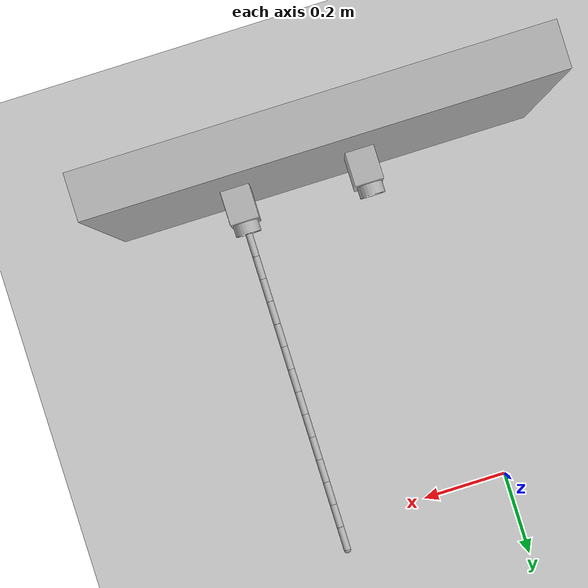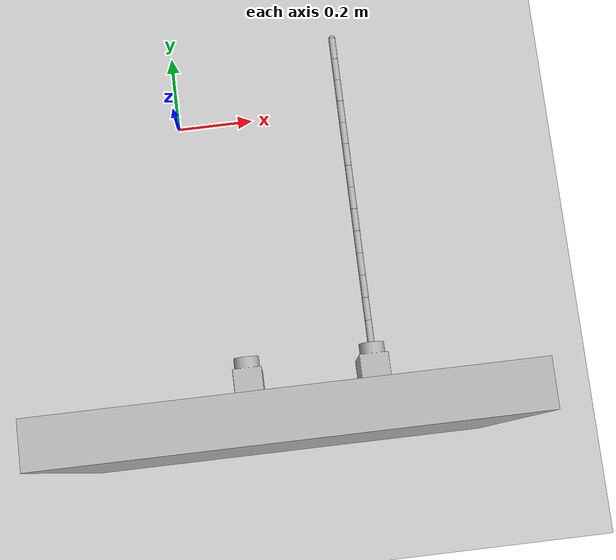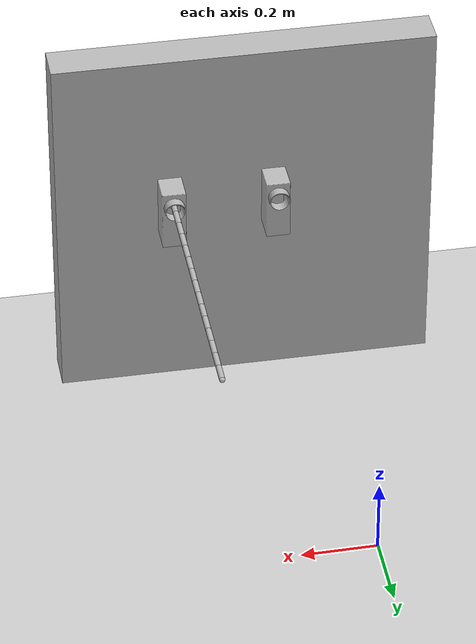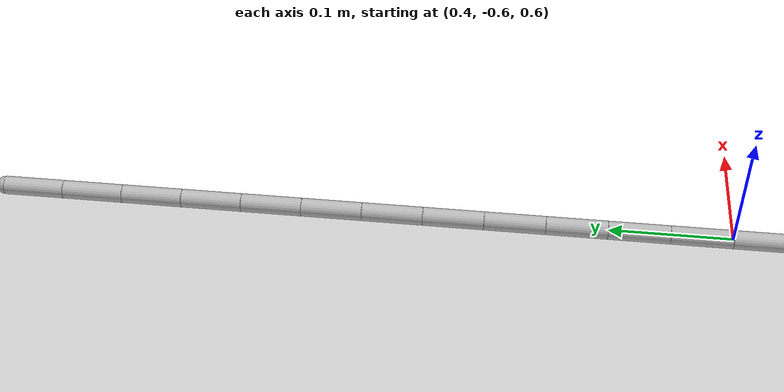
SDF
<sdf version="1.4">
 <world name="default">
  <plugin name="ros_link_attacher_plugin" filename="libgazebo_ros_link_attacher.so"/>
  <include><uri>model://sun</uri></include>
  <include><uri>model://ground_plane</uri></include>
  <include><uri>model://wall_sockets</uri><pose>0.2 -0.85 0.5 0 0 1.57</pose></include>
  <include><uri>model://cable</uri><pose>0.4 -0.8 0.6 0 0 1.57</pose></include>
 </world>
</sdf>

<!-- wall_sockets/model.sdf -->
<sdf version="1.5">
  <model name="wall_sockets">

    <pose>-0.75 -0.1 0.5 0 0 0</pose>

<joint name="joint_wall" type="fixed">
      <child>wall</child>
      <parent>world</parent>
      <axis>
        <use_parent_model_frame>true</use_parent_model_frame>
      </axis>
    </joint>

<link name="wall">
      <pose>0.000000 0.000000 0.000000 0.000000 -0.000000 0.000000</pose>
      <inertial>
        <pose>0.000000 0.000000 0.000000 0.000000 -0.000000 0.000000</pose>
        <mass>100000</mass>
        <inertia>
          <ixx>0.010000</ixx>
          <ixy>0.000000</ixy>
          <ixz>0.000000</ixz>
          <iyy>0.010000</iyy>
          <iyz>0.000000</iyz>
          <izz>0.010000</izz>
        </inertia>
      </inertial>
      <collision name="wall_collision">
        <pose>0.000000 0.000000 0.000000 0.000000 0.000000 0.000000</pose>
        <geometry>
	  <box>
	    <size> 0.1 1 1 </size>
	  </box>
        </geometry>
      </collision>
      <visual name="wall_vis">
        <pose>0.000000 0.000000 0.000000 0.000000 0.000000 0.000000</pose>
        <geometry>
          <box>
	    <size> 0.1 1 1 </size>
	  </box>
        </geometry>
      </visual>
      <velocity_decay />
    </link>

<joint name="joint_socket1" type="fixed">
      <child>socket1</child>
      <parent>wall</parent>
      <axis>
        <use_parent_model_frame>true</use_parent_model_frame>
      </axis>
    </joint>

<link name="socket1">
      <pose frame=''>0.125 -0.2 0.1 1.57 0 1.57</pose>
      <inertial>
        <pose frame=''>0 -0.041907 -0.028887 0 -0 0</pose>
        <mass>0.1684</mass>
        <inertia>
          <ixx>0.00062222</ixx>
          <ixy>9.8906e-10</ixy>
          <ixz>2.4666e-10</ixz>
          <iyy>0.00021389</iyy>
          <iyz>9.0339e-06</iyz>
          <izz>0.00061855</izz>
        </inertia>
      </inertial>
      <collision name="socket1_collision">
        <pose frame=''>0 0 0 1.5708 -0 0</pose>
        <geometry>
          <mesh>
            <scale>1 1 1</scale>
            <uri>model://socket/meshes/peng.STL</uri>
          </mesh>
        </geometry>
      </collision>
      <visual name="socket1_visual">
        <pose frame=''>0 0 0 1.5708 -0 0</pose>
        <geometry>
          <mesh>
            <scale>1 1 1</scale>
            <uri>model://socket/meshes/peng.STL</uri>
          </mesh>
        </geometry>
      </visual>
    </link>

<joint name="joint_socket2" type="fixed">
      <child>socket2</child>
      <parent>wall</parent>
      <axis>
        <use_parent_model_frame>true</use_parent_model_frame>
      </axis>
    </joint>

<link name="socket2">
      <pose frame=''>0.125 0.075 0.1 1.57 0 1.57</pose>
      <inertial>
        <pose frame=''>0 -0.041907 -0.028887 0 -0 0</pose>
        <mass>0.1684</mass>
        <inertia>
          <ixx>0.00062222</ixx>
          <ixy>9.8906e-10</ixy>
          <ixz>2.4666e-10</ixz>
          <iyy>0.00021389</iyy>
          <iyz>9.0339e-06</iyz>
          <izz>0.00061855</izz>
        </inertia>
      </inertial>
      <collision name="socket2_collision">
        <pose frame=''>0 0 0 1.5708 -0 0</pose>
        <geometry>
          <mesh>
            <scale>1 1 1</scale>
            <uri>model://socket/meshes/peng.STL</uri>
          </mesh>
        </geometry>
      </collision>
      <visual name="socket2_visual">
        <pose frame=''>0 0 0 1.5708 -0 0</pose>
        <geometry>
          <mesh>
            <scale>1 1 1</scale>
            <uri>model://socket/meshes/peng.STL</uri>
          </mesh>
        </geometry>
      </visual>
    </link>

  </model>
</sdf>

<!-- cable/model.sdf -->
<sdf version="1.5">
  <model name="cable">

    <pose>-0.65 -0.3 0.5 0 0 0</pose>

    <link name="plug">
      <pose>0.000000 0.000000 0.000000 0.000000 1.570796 0.000000</pose>
      <inertial>
        <pose>0.000000 0.000000 0.000000 0.000000 0.000000 0.000000</pose>
        <mass>0.100000</mass>
        <inertia>
          <ixx>0.010000</ixx>
          <ixy>0.000000</ixy>
          <ixz>0.000000</ixz>
          <iyy>0.010000</iyy>
          <iyz>0.000000</iyz>
          <izz>0.010000</izz>
        </inertia>
      </inertial>
      <collision name="plug_collision">
        <pose>-0.000000 0.000000 0.000000 0.000000 0.000000 0.000000</pose>
        <geometry>
          <cylinder>
            <radius>0.02</radius>
            <length>0.1</length>
          </cylinder>
        </geometry>
      </collision>
      <visual name="plug_vis">
        <pose>-0.000000 0.000000 0.000000 0.000000 0.000000 0.000000</pose>
        <geometry>
          <cylinder>
            <radius>0.02</radius>
            <length>0.1</length>
          </cylinder>
        </geometry>
      </visual>
      <velocity_decay />
    </link>

    <link name="link_01">

      <pose>0.050000 0.000000 0.000000 0.000000 -0.000000 0.000000</pose>
      <inertial>
        <pose>0.000000 0.000000 0.000000 0.000000 -0.000000 0.000000</pose>
        <mass>0.100000</mass>
        <inertia>
          <ixx>0.010000</ixx>
          <ixy>0.000000</ixy>
          <ixz>0.000000</ixz>
          <iyy>0.010000</iyy>
          <iyz>0.000000</iyz>
          <izz>0.010000</izz>
        </inertia>
      </inertial>
      <collision name="link_01_collision">
        <pose>0.025000 0.000000 0.000000 0.000000 1.570790 0.000000</pose>
        <geometry>
          <cylinder>
            <length>0.050000</length>
            <radius>0.007500</radius>
          </cylinder>
        </geometry>
      </collision>
      <visual name="link_01_vis">
        <pose>0.025000 0.000000 0.000000 0.000000 1.570790 0.000000</pose>
        <geometry>
          <cylinder>
            <length>0.050000</length>
            <radius>0.007500</radius>
          </cylinder>
        </geometry>
      </visual>
      <velocity_decay />
    </link>
    <joint name="joint_plug" type="fixed">
      <child>link_01</child>
      <parent>plug</parent>
      <axis>
        <xyz>0.000000 1.000000 0.000000</xyz>
        <limit>
          <lower>-0.200000</lower>
          <upper>0.200000</upper>
        </limit>
        <dynamics>
          <damping>10.000000</damping>
          <friction>0.000000</friction>
        </dynamics>
        <use_parent_model_frame>true</use_parent_model_frame>
      </axis>
    </joint>
    <link name="sphere_02">
      <gravity>false</gravity>
      <pose>0.100000 0.000000 0.000000 0.000000 -0.000000 0.000000</pose>
      <inertial>
        <pose>0.000000 0.000000 0.000000 0.000000 -0.000000 0.000000</pose>
        <mass>0.100000</mass>
        <inertia>
          <ixx>0.010000</ixx>
          <ixy>0.000000</ixy>
          <ixz>0.000000</ixz>
          <iyy>0.010000</iyy>
          <iyz>0.000000</iyz>
          <izz>0.010000</izz>
        </inertia>
      </inertial>
      <collision name="sphere_02_collision">
        <pose>0.000000 0.000000 0.000000 0.000000 -0.000000 0.000000</pose>
        <geometry>
          <sphere>
            <radius>0.007500</radius>
          </sphere>
        </geometry>
      </collision>
      <visual name="sphere_02_vis">
        <pose>0.000000 0.000000 0.000000 0.000000 -0.000000 0.000000</pose>
        <geometry>
          <sphere>
            <radius>0.007500</radius>
          </sphere>
        </geometry>
      </visual>
      <velocity_decay />
    </link>
    <joint name="joint_02_1" type="revolute">
      <child>sphere_02</child>
      <parent>link_01</parent>
      <axis>
        <xyz>0.000000 0.000000 1.000000</xyz>
        <limit>
          <lower>-0.005000</lower>
          <upper>0.005000</upper>
        </limit>
        <dynamics>
          <damping>10.000000</damping>
          <friction>0.000000</friction>
        </dynamics>
        <use_parent_model_frame>true</use_parent_model_frame>
      </axis>
    </joint>
    <link name="link_02">

      <pose>0.100000 0.000000 0.000000 0.000000 -0.000000 0.000000</pose>
      <inertial>
        <pose>0.000000 0.000000 0.000000 0.000000 -0.000000 0.000000</pose>
        <mass>0.100000</mass>
        <inertia>
          <ixx>0.010000</ixx>
          <ixy>0.000000</ixy>
          <ixz>0.000000</ixz>
          <iyy>0.010000</iyy>
          <iyz>0.000000</iyz>
          <izz>0.010000</izz>
        </inertia>
      </inertial>
      <collision name="link_02_collision">
        <pose>0.025000 0.000000 0.000000 0.000000 1.570790 0.000000</pose>
        <geometry>
          <cylinder>
            <length>0.050000</length>
            <radius>0.007500</radius>
          </cylinder>
        </geometry>
      </collision>
      <visual name="link_02_vis">
        <pose>0.025000 0.000000 0.000000 0.000000 1.570790 0.000000</pose>
        <geometry>
          <cylinder>
            <length>0.050000</length>
            <radius>0.007500</radius>
          </cylinder>
        </geometry>
      </visual>
      <velocity_decay />
    </link>
    <joint name="joint_02_2" type="revolute">
      <child>link_02</child>
      <parent>sphere_02</parent>
      <axis>
        <xyz>0.000000 1.000000 0.000000</xyz>
        <dynamics>
          <damping>1.75954</damping>
          <friction>0.000000</friction>
	  <spring_stiffness>0.557738</spring_stiffness>
        </dynamics>
        <use_parent_model_frame>true</use_parent_model_frame>
      </axis>
    </joint>
    <link name="sphere_03">
      <gravity>false</gravity>
      <pose>0.150000 0.000000 0.000000 0.000000 -0.000000 0.000000</pose>
      <inertial>
        <pose>0.000000 0.000000 0.000000 0.000000 -0.000000 0.000000</pose>
        <mass>0.100000</mass>
        <inertia>
          <ixx>0.010000</ixx>
          <ixy>0.000000</ixy>
          <ixz>0.000000</ixz>
          <iyy>0.010000</iyy>
          <iyz>0.000000</iyz>
          <izz>0.010000</izz>
        </inertia>
      </inertial>
      <collision name="sphere_03_collision">
        <pose>0.000000 0.000000 0.000000 0.000000 -0.000000 0.000000</pose>
        <geometry>
          <sphere>
            <radius>0.007500</radius>
          </sphere>
        </geometry>
      </collision>
      <visual name="sphere_03_vis">
        <pose>0.000000 0.000000 0.000000 0.000000 -0.000000 0.000000</pose>
        <geometry>
          <sphere>
            <radius>0.007500</radius>
          </sphere>
        </geometry>
      </visual>
      <velocity_decay />
    </link>
    <joint name="joint_03_1" type="revolute">
      <child>sphere_03</child>
      <parent>link_02</parent>
      <axis>
        <xyz>0.000000 0.000000 1.000000</xyz>
        <limit>
          <lower>-0.005000</lower>
          <upper>0.005000</upper>
        </limit>
        <dynamics>
          <damping>10.000000</damping>
          <friction>0.000000</friction>
        </dynamics>
        <use_parent_model_frame>true</use_parent_model_frame>
      </axis>
    </joint>
    <link name="link_03">

      <pose>0.150000 0.000000 0.000000 0.000000 -0.000000 0.000000</pose>
      <inertial>
        <pose>0.000000 0.000000 0.000000 0.000000 -0.000000 0.000000</pose>
        <mass>0.100000</mass>
        <inertia>
          <ixx>0.010000</ixx>
          <ixy>0.000000</ixy>
          <ixz>0.000000</ixz>
          <iyy>0.010000</iyy>
          <iyz>0.000000</iyz>
          <izz>0.010000</izz>
        </inertia>
      </inertial>
      <collision name="link_03_collision">
        <pose>0.025000 0.000000 0.000000 0.000000 1.570790 0.000000</pose>
        <geometry>
          <cylinder>
            <length>0.050000</length>
            <radius>0.007500</radius>
          </cylinder>
        </geometry>
      </collision>
      <visual name="link_03_vis">
        <pose>0.025000 0.000000 0.000000 0.000000 1.570790 0.000000</pose>
        <geometry>
          <cylinder>
            <length>0.050000</length>
            <radius>0.007500</radius>
          </cylinder>
        </geometry>
      </visual>
      <velocity_decay />
    </link>
    <joint name="joint_03_2" type="revolute">
      <child>link_03</child>
      <parent>sphere_03</parent>
      <axis>
        <xyz>0.000000 1.000000 0.000000</xyz>
        <dynamics>
          <damping>3.5445</damping>
          <friction>0.000000</friction>
	  <spring_stiffness>0.906265</spring_stiffness>
        </dynamics>
        <use_parent_model_frame>true</use_parent_model_frame>
      </axis>
    </joint>
    <link name="sphere_04">
      <gravity>false</gravity>
      <pose>0.200000 0.000000 0.000000 0.000000 -0.000000 0.000000</pose>
      <inertial>
        <pose>0.000000 0.000000 0.000000 0.000000 -0.000000 0.000000</pose>
        <mass>0.100000</mass>
        <inertia>
          <ixx>0.010000</ixx>
          <ixy>0.000000</ixy>
          <ixz>0.000000</ixz>
          <iyy>0.010000</iyy>
          <iyz>0.000000</iyz>
          <izz>0.010000</izz>
        </inertia>
      </inertial>
      <collision name="sphere_04_collision">
        <pose>0.000000 0.000000 0.000000 0.000000 -0.000000 0.000000</pose>
        <geometry>
          <sphere>
            <radius>0.007500</radius>
          </sphere>
        </geometry>
      </collision>
      <visual name="sphere_04_vis">
        <pose>0.000000 0.000000 0.000000 0.000000 -0.000000 0.000000</pose>
        <geometry>
          <sphere>
            <radius>0.007500</radius>
          </sphere>
        </geometry>
      </visual>
      <velocity_decay />
    </link>
    <joint name="joint_04_1" type="revolute">
      <child>sphere_04</child>
      <parent>link_03</parent>
      <axis>
        <xyz>0.000000 0.000000 1.000000</xyz>
        <limit>
          <lower>-0.005000</lower>
          <upper>0.005000</upper>
        </limit>
        <dynamics>
          <damping>10.000000</damping>
          <friction>0.000000</friction>
        </dynamics>
        <use_parent_model_frame>true</use_parent_model_frame>
      </axis>
    </joint>
    <link name="link_04">

      <pose>0.200000 0.000000 0.000000 0.000000 -0.000000 0.000000</pose>
      <inertial>
        <pose>0.000000 0.000000 0.000000 0.000000 -0.000000 0.000000</pose>
        <mass>0.0100000</mass>
        <inertia>
          <ixx>0.010000</ixx>
          <ixy>0.000000</ixy>
          <ixz>0.000000</ixz>
          <iyy>0.010000</iyy>
          <iyz>0.000000</iyz>
          <izz>0.010000</izz>
        </inertia>
      </inertial>
      <collision name="link_04_collision">
        <pose>0.025000 0.000000 0.000000 0.000000 1.570790 0.000000</pose>
        <geometry>
          <cylinder>
            <length>0.050000</length>
            <radius>0.007500</radius>
          </cylinder>
        </geometry>
      </collision>
      <visual name="link_04_vis">
        <pose>0.025000 0.000000 0.000000 0.000000 1.570790 0.000000</pose>
        <geometry>
          <cylinder>
            <length>0.050000</length>
            <radius>0.007500</radius>
          </cylinder>
        </geometry>
      </visual>
      <velocity_decay />
    </link>
    <joint name="joint_04_2" type="revolute">
      <child>link_04</child>
      <parent>sphere_04</parent>
      <axis>
        <xyz>0.000000 1.000000 0.000000</xyz>
        <dynamics>
          <damping>6.31788</damping>
          <friction>0.000000</friction>
          <spring_stiffness>0.675703</spring_stiffness>
        </dynamics>
        <use_parent_model_frame>true</use_parent_model_frame>
      </axis>
    </joint>
    <link name="sphere_05">
      <gravity>false</gravity>
      <pose>0.250000 0.000000 0.000000 0.000000 -0.000000 0.000000</pose>
      <inertial>
        <pose>0.000000 0.000000 0.000000 0.000000 -0.000000 0.000000</pose>
        <mass>0.100000</mass>
        <inertia>
          <ixx>0.010000</ixx>
          <ixy>0.000000</ixy>
          <ixz>0.000000</ixz>
          <iyy>0.010000</iyy>
          <iyz>0.000000</iyz>
          <izz>0.010000</izz>
        </inertia>
      </inertial>
      <collision name="sphere_05_collision">
        <pose>0.000000 0.000000 0.000000 0.000000 -0.000000 0.000000</pose>
        <geometry>
          <sphere>
            <radius>0.007500</radius>
          </sphere>
        </geometry>
      </collision>
      <visual name="sphere_05_vis">
        <pose>0.000000 0.000000 0.000000 0.000000 -0.000000 0.000000</pose>
        <geometry>
          <sphere>
            <radius>0.007500</radius>
          </sphere>
        </geometry>
      </visual>
      <velocity_decay />
    </link>
    <joint name="joint_05_1" type="revolute">
      <child>sphere_05</child>
      <parent>link_04</parent>
      <axis>
        <xyz>0.000000 0.000000 1.000000</xyz>
        <limit>
          <lower>-0.005000</lower>
          <upper>0.005000</upper>
        </limit>
        <dynamics>
          <damping>10.000000</damping>
          <friction>0.000000</friction>
        </dynamics>
        <use_parent_model_frame>true</use_parent_model_frame>
      </axis>
    </joint>
    <link name="link_05">

      <pose>0.250000 0.000000 0.000000 0.000000 -0.000000 0.000000</pose>
      <inertial>
        <pose>0.000000 0.000000 0.000000 0.000000 -0.000000 0.000000</pose>
        <mass>0.0100000</mass>
        <inertia>
          <ixx>0.010000</ixx>
          <ixy>0.000000</ixy>
          <ixz>0.000000</ixz>
          <iyy>0.010000</iyy>
          <iyz>0.000000</iyz>
          <izz>0.010000</izz>
        </inertia>
      </inertial>
      <collision name="link_05_collision">
        <pose>0.025000 0.000000 0.000000 0.000000 1.570790 0.000000</pose>
        <geometry>
          <cylinder>
            <length>0.050000</length>
            <radius>0.007500</radius>
          </cylinder>
        </geometry>
      </collision>
      <visual name="link_05_vis">
        <pose>0.025000 0.000000 0.000000 0.000000 1.570790 0.000000</pose>
        <geometry>
          <cylinder>
            <length>0.050000</length>
            <radius>0.007500</radius>
          </cylinder>
        </geometry>
      </visual>
      <velocity_decay />
    </link>
    <joint name="joint_05_2" type="revolute">
      <child>link_05</child>
      <parent>sphere_05</parent>
      <axis>
        <xyz>0.000000 1.000000 0.000000</xyz>
        <dynamics>
          <damping>7.02696</damping>
          <friction>0.000000</friction>
          <spring_stiffness>0.710039</spring_stiffness>
        </dynamics>
        <use_parent_model_frame>true</use_parent_model_frame>
      </axis>
    </joint>
    <link name="sphere_06">
      <gravity>false</gravity>
      <pose>0.300000 0.000000 0.000000 0.000000 -0.000000 0.000000</pose>
      <inertial>
        <pose>0.000000 0.000000 0.000000 0.000000 -0.000000 0.000000</pose>
        <mass>0.100000</mass>
        <inertia>
          <ixx>0.010000</ixx>
          <ixy>0.000000</ixy>
          <ixz>0.000000</ixz>
          <iyy>0.010000</iyy>
          <iyz>0.000000</iyz>
          <izz>0.010000</izz>
        </inertia>
      </inertial>
      <collision name="sphere_06_collision">
        <pose>0.000000 0.000000 0.000000 0.000000 -0.000000 0.000000</pose>
        <geometry>
          <sphere>
            <radius>0.007500</radius>
          </sphere>
        </geometry>
      </collision>
      <visual name="sphere_06_vis">
        <pose>0.000000 0.000000 0.000000 0.000000 -0.000000 0.000000</pose>
        <geometry>
          <sphere>
            <radius>0.007500</radius>
          </sphere>
        </geometry>
      </visual>
      <velocity_decay />
    </link>
    <joint name="joint_06_1" type="revolute">
      <child>sphere_06</child>
      <parent>link_05</parent>
      <axis>
        <xyz>0.000000 0.000000 1.000000</xyz>
        <limit>
          <lower>-0.005000</lower>
          <upper>0.005000</upper>
        </limit>
        <dynamics>
          <damping>10.000000</damping>
          <friction>0.000000</friction>
        </dynamics>
        <use_parent_model_frame>true</use_parent_model_frame>
      </axis>
    </joint>
    <link name="link_06">

      <pose>0.300000 0.000000 0.000000 0.000000 -0.000000 0.000000</pose>
      <inertial>
        <pose>0.000000 0.000000 0.000000 0.000000 -0.000000 0.000000</pose>
        <mass>0.0100000</mass>
        <inertia>
          <ixx>0.010000</ixx>
          <ixy>0.000000</ixy>
          <ixz>0.000000</ixz>
          <iyy>0.010000</iyy>
          <iyz>0.000000</iyz>
          <izz>0.010000</izz>
        </inertia>
      </inertial>
      <collision name="link_06_collision">
        <pose>0.025000 0.000000 0.000000 0.000000 1.570790 0.000000</pose>
        <geometry>
          <cylinder>
            <length>0.050000</length>
            <radius>0.007500</radius>
          </cylinder>
        </geometry>
      </collision>
      <visual name="link_06_vis">
        <pose>0.025000 0.000000 0.000000 0.000000 1.570790 0.000000</pose>
        <geometry>
          <cylinder>
            <length>0.050000</length>
            <radius>0.007500</radius>
          </cylinder>
        </geometry>
      </visual>
      <velocity_decay />
    </link>
    <joint name="joint_06_2" type="revolute">
      <child>link_06</child>
      <parent>sphere_06</parent>
      <axis>
        <xyz>0.000000 1.000000 0.000000</xyz>
        <limit>
          <lower>-0.500000</lower>
          <upper>0.500000</upper>
        </limit>
        <dynamics>
          <damping>10.000000</damping>
          <friction>0.000000</friction>
        </dynamics>
        <use_parent_model_frame>true</use_parent_model_frame>
      </axis>
    </joint>
    <link name="sphere_07">
      <gravity>false</gravity>
      <pose>0.350000 0.000000 0.000000 0.000000 -0.000000 0.000000</pose>
      <inertial>
        <pose>0.000000 0.000000 0.000000 0.000000 -0.000000 0.000000</pose>
        <mass>0.100000</mass>
        <inertia>
          <ixx>0.010000</ixx>
          <ixy>0.000000</ixy>
          <ixz>0.000000</ixz>
          <iyy>0.010000</iyy>
          <iyz>0.000000</iyz>
          <izz>0.010000</izz>
        </inertia>
      </inertial>
      <collision name="sphere_07_collision">
        <pose>0.000000 0.000000 0.000000 0.000000 -0.000000 0.000000</pose>
        <geometry>
          <sphere>
            <radius>0.007500</radius>
          </sphere>
        </geometry>
      </collision>
      <visual name="sphere_07_vis">
        <pose>0.000000 0.000000 0.000000 0.000000 -0.000000 0.000000</pose>
        <geometry>
          <sphere>
            <radius>0.007500</radius>
          </sphere>
        </geometry>
      </visual>
      <velocity_decay />
    </link>
    <joint name="joint_07_1" type="revolute">
      <child>sphere_07</child>
      <parent>link_06</parent>
      <axis>
        <xyz>0.000000 0.000000 1.000000</xyz>
        <limit>
          <lower>-0.005000</lower>
          <upper>0.005000</upper>
        </limit>
        <dynamics>
          <damping>10.000000</damping>
          <friction>0.000000</friction>
        </dynamics>
        <use_parent_model_frame>true</use_parent_model_frame>
      </axis>
    </joint>
    <link name="link_07">

      <pose>0.350000 0.000000 0.000000 0.000000 -0.000000 0.000000</pose>
      <inertial>
        <pose>0.000000 0.000000 0.000000 0.000000 -0.000000 0.000000</pose>
        <mass>0.0100000</mass>
        <inertia>
          <ixx>0.010000</ixx>
          <ixy>0.000000</ixy>
          <ixz>0.000000</ixz>
          <iyy>0.010000</iyy>
          <iyz>0.000000</iyz>
          <izz>0.010000</izz>
        </inertia>
      </inertial>
      <collision name="link_07_collision">
        <pose>0.025000 0.000000 0.000000 0.000000 1.570790 0.000000</pose>
        <geometry>
          <cylinder>
            <length>0.050000</length>
            <radius>0.007500</radius>
          </cylinder>
        </geometry>
      </collision>
      <visual name="link_07_vis">
        <pose>0.025000 0.000000 0.000000 0.000000 1.570790 0.000000</pose>
        <geometry>
          <cylinder>
            <length>0.050000</length>
            <radius>0.007500</radius>
          </cylinder>
        </geometry>
      </visual>
      <velocity_decay />
    </link>
    <joint name="joint_07_2" type="revolute">
      <child>link_07</child>
      <parent>sphere_07</parent>
      <axis>
        <xyz>0.000000 1.000000 0.000000</xyz>
        <limit>
          <lower>-0.500000</lower>
          <upper>0.500000</upper>
        </limit>
        <dynamics>
          <damping>10.000000</damping>
          <friction>0.000000</friction>
        </dynamics>
        <use_parent_model_frame>true</use_parent_model_frame>
      </axis>
    </joint>
    <link name="sphere_08">
      <gravity>false</gravity>
      <pose>0.400000 0.000000 0.000000 0.000000 -0.000000 0.000000</pose>
      <inertial>
        <pose>0.000000 0.000000 0.000000 0.000000 -0.000000 0.000000</pose>
        <mass>0.100000</mass>
        <inertia>
          <ixx>0.010000</ixx>
          <ixy>0.000000</ixy>
          <ixz>0.000000</ixz>
          <iyy>0.010000</iyy>
          <iyz>0.000000</iyz>
          <izz>0.010000</izz>
        </inertia>
      </inertial>
      <collision name="sphere_08_collision">
        <pose>0.000000 0.000000 0.000000 0.000000 -0.000000 0.000000</pose>
        <geometry>
          <sphere>
            <radius>0.007500</radius>
          </sphere>
        </geometry>
      </collision>
      <visual name="sphere_08_vis">
        <pose>0.000000 0.000000 0.000000 0.000000 -0.000000 0.000000</pose>
        <geometry>
          <sphere>
            <radius>0.007500</radius>
          </sphere>
        </geometry>
      </visual>
      <velocity_decay />
    </link>
    <joint name="joint_08_1" type="revolute">
      <child>sphere_08</child>
      <parent>link_07</parent>
      <axis>
        <xyz>0.000000 0.000000 1.000000</xyz>
        <limit>
          <lower>-0.005000</lower>
          <upper>0.005000</upper>
        </limit>
        <dynamics>
          <damping>10.000000</damping>
          <friction>0.000000</friction>
        </dynamics>
        <use_parent_model_frame>true</use_parent_model_frame>
      </axis>
    </joint>
    <link name="link_08">

      <pose>0.400000 0.000000 0.000000 0.000000 -0.000000 0.000000</pose>
      <inertial>
        <pose>0.000000 0.000000 0.000000 0.000000 -0.000000 0.000000</pose>
        <mass>0.0100000</mass>
        <inertia>
          <ixx>0.010000</ixx>
          <ixy>0.000000</ixy>
          <ixz>0.000000</ixz>
          <iyy>0.010000</iyy>
          <iyz>0.000000</iyz>
          <izz>0.010000</izz>
        </inertia>
      </inertial>
      <collision name="link_08_collision">
        <pose>0.025000 0.000000 0.000000 0.000000 1.570790 0.000000</pose>
        <geometry>
          <cylinder>
            <length>0.050000</length>
            <radius>0.007500</radius>
          </cylinder>
        </geometry>
      </collision>
      <visual name="link_08_vis">
        <pose>0.025000 0.000000 0.000000 0.000000 1.570790 0.000000</pose>
        <geometry>
          <cylinder>
            <length>0.050000</length>
            <radius>0.007500</radius>
          </cylinder>
        </geometry>
      </visual>
      <velocity_decay />
    </link>
    <joint name="joint_08_2" type="revolute">
      <child>link_08</child>
      <parent>sphere_08</parent>
      <axis>
        <xyz>0.000000 1.000000 0.000000</xyz>
        <limit>
          <lower>-0.500000</lower>
          <upper>0.500000</upper>
        </limit>
        <dynamics>
          <damping>10.000000</damping>
          <friction>0.000000</friction>
        </dynamics>
        <use_parent_model_frame>true</use_parent_model_frame>
      </axis>
    </joint>
    <link name="sphere_09">
      <gravity>false</gravity>
      <pose>0.450000 0.000000 0.000000 0.000000 -0.000000 0.000000</pose>
      <inertial>
        <pose>0.000000 0.000000 0.000000 0.000000 -0.000000 0.000000</pose>
        <mass>0.100000</mass>
        <inertia>
          <ixx>0.010000</ixx>
          <ixy>0.000000</ixy>
          <ixz>0.000000</ixz>
          <iyy>0.010000</iyy>
          <iyz>0.000000</iyz>
          <izz>0.010000</izz>
        </inertia>
      </inertial>
      <collision name="sphere_09_collision">
        <pose>0.000000 0.000000 0.000000 0.000000 -0.000000 0.000000</pose>
        <geometry>
          <sphere>
            <radius>0.007500</radius>
          </sphere>
        </geometry>
      </collision>
      <visual name="sphere_09_vis">
        <pose>0.000000 0.000000 0.000000 0.000000 -0.000000 0.000000</pose>
        <geometry>
          <sphere>
            <radius>0.007500</radius>
          </sphere>
        </geometry>
      </visual>
      <velocity_decay />
    </link>
    <joint name="joint_09_1" type="revolute">
      <child>sphere_09</child>
      <parent>link_08</parent>
      <axis>
        <xyz>0.000000 0.000000 1.000000</xyz>
        <limit>
          <lower>-0.005000</lower>
          <upper>0.005000</upper>
        </limit>
        <dynamics>
          <damping>10.000000</damping>
          <friction>0.000000</friction>
        </dynamics>
        <use_parent_model_frame>true</use_parent_model_frame>
      </axis>
    </joint>
    <link name="link_09">

      <pose>0.450000 0.000000 0.000000 0.000000 -0.000000 0.000000</pose>
      <inertial>
        <pose>0.000000 0.000000 0.000000 0.000000 -0.000000 0.000000</pose>
        <mass>0.0100000</mass>
        <inertia>
          <ixx>0.010000</ixx>
          <ixy>0.000000</ixy>
          <ixz>0.000000</ixz>
          <iyy>0.010000</iyy>
          <iyz>0.000000</iyz>
          <izz>0.010000</izz>
        </inertia>
      </inertial>
      <collision name="link_09_collision">
        <pose>0.025000 0.000000 0.000000 0.000000 1.570790 0.000000</pose>
        <geometry>
          <cylinder>
            <length>0.050000</length>
            <radius>0.007500</radius>
          </cylinder>
        </geometry>
      </collision>
      <visual name="link_09_vis">
        <pose>0.025000 0.000000 0.000000 0.000000 1.570790 0.000000</pose>
        <geometry>
          <cylinder>
            <length>0.050000</length>
            <radius>0.007500</radius>
          </cylinder>
        </geometry>
      </visual>
      <velocity_decay />
    </link>
    <joint name="joint_09_2" type="revolute">
      <child>link_09</child>
      <parent>sphere_09</parent>
      <axis>
        <xyz>0.000000 1.000000 0.000000</xyz>
        <limit>
          <lower>-0.500000</lower>
          <upper>0.500000</upper>
        </limit>
        <dynamics>
          <damping>10.000000</damping>
          <friction>0.000000</friction>
        </dynamics>
        <use_parent_model_frame>true</use_parent_model_frame>
      </axis>
    </joint>
    <link name="sphere_10">
      <gravity>false</gravity>
      <pose>0.500000 0.000000 0.000000 0.000000 -0.000000 0.000000</pose>
      <inertial>
        <pose>0.000000 0.000000 0.000000 0.000000 -0.000000 0.000000</pose>
        <mass>0.100000</mass>
        <inertia>
          <ixx>0.010000</ixx>
          <ixy>0.000000</ixy>
          <ixz>0.000000</ixz>
          <iyy>0.010000</iyy>
          <iyz>0.000000</iyz>
          <izz>0.010000</izz>
        </inertia>
      </inertial>
      <collision name="sphere_10_collision">
        <pose>0.000000 0.000000 0.000000 0.000000 -0.000000 0.000000</pose>
        <geometry>
          <sphere>
            <radius>0.007500</radius>
          </sphere>
        </geometry>
      </collision>
      <visual name="sphere_10_vis">
        <pose>0.000000 0.000000 0.000000 0.000000 -0.000000 0.000000</pose>
        <geometry>
          <sphere>
            <radius>0.007500</radius>
          </sphere>
        </geometry>
      </visual>
      <velocity_decay />
    </link>
    <joint name="joint_10_1" type="revolute">
      <child>sphere_10</child>
      <parent>link_09</parent>
      <axis>
        <xyz>0.000000 0.000000 1.000000</xyz>
        <limit>
          <lower>-0.005000</lower>
          <upper>0.005000</upper>
        </limit>
        <dynamics>
          <damping>10.000000</damping>
          <friction>0.000000</friction>
        </dynamics>
        <use_parent_model_frame>true</use_parent_model_frame>
      </axis>
    </joint>

    <link name="link_10">

      <pose>0.500000 0.000000 0.000000 0.000000 -0.000000 0.000000</pose>
      <inertial>
        <pose>0.000000 0.000000 0.000000 0.000000 -0.000000 0.000000</pose>
        <mass>0.0100000</mass>
        <inertia>
          <ixx>0.010000</ixx>
          <ixy>0.000000</ixy>
          <ixz>0.000000</ixz>
          <iyy>0.010000</iyy>
          <iyz>0.000000</iyz>
          <izz>0.010000</izz>
        </inertia>
      </inertial>
      <collision name="link_10_collision">
        <pose>0.025000 0.000000 0.000000 0.000000 1.570790 0.000000</pose>
        <geometry>
          <cylinder>
            <length>0.050000</length>
            <radius>0.007500</radius>
          </cylinder>
        </geometry>
      </collision>
      <visual name="link_10_vis">
        <pose>0.025000 0.000000 0.000000 0.000000 1.570790 0.000000</pose>
        <geometry>
          <cylinder>
            <length>0.050000</length>
            <radius>0.007500</radius>
          </cylinder>
        </geometry>
      </visual>
      <velocity_decay />
    </link>
    <joint name="joint_10_2" type="revolute">
      <child>link_10</child>
      <parent>sphere_10</parent>
      <axis>
        <xyz>0.000000 1.000000 0.000000</xyz>
        <limit>
          <lower>-0.500000</lower>
          <upper>0.500000</upper>
        </limit>
        <dynamics>
          <damping>10.000000</damping>
          <friction>0.000000</friction>
        </dynamics>
        <use_parent_model_frame>true</use_parent_model_frame>
      </axis>
    </joint>
    <link name="sphere_11">
      <gravity>false</gravity>
      <pose>0.550000 0.000000 0.000000 0.000000 -0.000000 0.000000</pose>
      <inertial>
        <pose>0.000000 0.000000 0.000000 0.000000 -0.000000 0.000000</pose>
        <mass>0.100000</mass>
        <inertia>
          <ixx>0.010000</ixx>
          <ixy>0.000000</ixy>
          <ixz>0.000000</ixz>
          <iyy>0.010000</iyy>
          <iyz>0.000000</iyz>
          <izz>0.010000</izz>
        </inertia>
      </inertial>
      <collision name="sphere_11_collision">
        <pose>0.000000 0.000000 0.000000 0.000000 -0.000000 0.000000</pose>
        <geometry>
          <sphere>
            <radius>0.007500</radius>
          </sphere>
        </geometry>
      </collision>
      <visual name="sphere_11_vis">
        <pose>0.000000 0.000000 0.000000 0.000000 -0.000000 0.000000</pose>
        <geometry>
          <sphere>
            <radius>0.007500</radius>
          </sphere>
        </geometry>
      </visual>
      <velocity_decay />
    </link>
    <joint name="joint_11_1" type="revolute">
      <child>sphere_11</child>
      <parent>link_10</parent>
      <axis>
        <xyz>0.000000 0.000000 1.000000</xyz>
        <limit>
          <lower>-0.005000</lower>
          <upper>0.005000</upper>
        </limit>
        <dynamics>
          <damping>10.000000</damping>
          <friction>0.000000</friction>
        </dynamics>
        <use_parent_model_frame>true</use_parent_model_frame>
      </axis>
    </joint>

<link name="link_11">

      <pose>0.550000 0.000000 0.000000 0.000000 -0.000000 0.000000</pose>
      <inertial>
        <pose>0.000000 0.000000 0.000000 0.000000 -0.000000 0.000000</pose>
        <mass>0.0100000</mass>
        <inertia>
          <ixx>0.010000</ixx>
          <ixy>0.000000</ixy>
          <ixz>0.000000</ixz>
          <iyy>0.010000</iyy>
          <iyz>0.000000</iyz>
          <izz>0.010000</izz>
        </inertia>
      </inertial>
      <collision name="link_11_collision">
        <pose>0.025000 0.000000 0.000000 0.000000 1.570790 0.000000</pose>
        <geometry>
          <cylinder>
            <length>0.050000</length>
            <radius>0.007500</radius>
          </cylinder>
        </geometry>
      </collision>
      <visual name="link_11_vis">
        <pose>0.025000 0.000000 0.000000 0.000000 1.570790 0.000000</pose>
        <geometry>
          <cylinder>
            <length>0.050000</length>
            <radius>0.007500</radius>
          </cylinder>
        </geometry>
      </visual>
      <velocity_decay />
    </link>
    <joint name="joint_11_2" type="revolute">
      <child>link_11</child>
      <parent>sphere_11</parent>
      <axis>
        <xyz>0.000000 1.000000 0.000000</xyz>
        <limit>
          <lower>-0.500000</lower>
          <upper>0.500000</upper>
        </limit>
        <dynamics>
          <damping>10.000000</damping>
          <friction>0.000000</friction>
        </dynamics>
        <use_parent_model_frame>true</use_parent_model_frame>
      </axis>
    </joint>
    <link name="sphere_12">
      <gravity>false</gravity>
      <pose>0.600000 0.000000 0.000000 0.000000 -0.000000 0.000000</pose>
      <inertial>
        <pose>0.000000 0.000000 0.000000 0.000000 -0.000000 0.000000</pose>
        <mass>0.100000</mass>
        <inertia>
          <ixx>0.010000</ixx>
          <ixy>0.000000</ixy>
          <ixz>0.000000</ixz>
          <iyy>0.010000</iyy>
          <iyz>0.000000</iyz>
          <izz>0.010000</izz>
        </inertia>
      </inertial>
      <collision name="sphere_12_collision">
        <pose>0.000000 0.000000 0.000000 0.000000 -0.000000 0.000000</pose>
        <geometry>
          <sphere>
            <radius>0.007500</radius>
          </sphere>
        </geometry>
      </collision>
      <visual name="sphere_12_vis">
        <pose>0.000000 0.000000 0.000000 0.000000 -0.000000 0.000000</pose>
        <geometry>
          <sphere>
            <radius>0.007500</radius>
          </sphere>
        </geometry>
      </visual>
      <velocity_decay />
    </link>
    <joint name="joint_12_1" type="revolute">
      <child>sphere_12</child>
      <parent>link_11</parent>
      <axis>
        <xyz>0.000000 0.000000 1.000000</xyz>
        <limit>
          <lower>-0.005000</lower>
          <upper>0.005000</upper>
        </limit>
        <dynamics>
          <damping>10.000000</damping>
          <friction>0.000000</friction>
        </dynamics>
        <use_parent_model_frame>true</use_parent_model_frame>
      </axis>
    </joint>

<link name="link_12">

      <pose>0.600000 0.000000 0.000000 0.000000 -0.000000 0.000000</pose>
      <inertial>
        <pose>0.000000 0.000000 0.000000 0.000000 -0.000000 0.000000</pose>
        <mass>0.0100000</mass>
        <inertia>
          <ixx>0.010000</ixx>
          <ixy>0.000000</ixy>
          <ixz>0.000000</ixz>
          <iyy>0.010000</iyy>
          <iyz>0.000000</iyz>
          <izz>0.010000</izz>
        </inertia>
      </inertial>
      <collision name="link_12_collision">
        <pose>0.025000 0.000000 0.000000 0.000000 1.570790 0.000000</pose>
        <geometry>
          <cylinder>
            <length>0.050000</length>
            <radius>0.007500</radius>
          </cylinder>
        </geometry>
      </collision>
      <visual name="link_12_vis">
        <pose>0.025000 0.000000 0.000000 0.000000 1.570790 0.000000</pose>
        <geometry>
          <cylinder>
            <length>0.050000</length>
            <radius>0.007500</radius>
          </cylinder>
        </geometry>
      </visual>
      <velocity_decay />
    </link>
    <joint name="joint_12_2" type="revolute">
      <child>link_12</child>
      <parent>sphere_12</parent>
      <axis>
        <xyz>0.000000 1.000000 0.000000</xyz>
        <limit>
          <lower>-0.700000</lower>
          <upper>0.700000</upper>
        </limit>
        <dynamics>
          <damping>10.000000</damping>
          <friction>0.000000</friction>
        </dynamics>
        <use_parent_model_frame>true</use_parent_model_frame>
      </axis>
    </joint>
    <link name="sphere_13">
      <gravity>false</gravity>
      <pose>0.650000 0.000000 0.000000 0.000000 -0.000000 0.000000</pose>
      <inertial>
        <pose>0.000000 0.000000 0.000000 0.000000 -0.000000 0.000000</pose>
        <mass>0.100000</mass>
        <inertia>
          <ixx>0.010000</ixx>
          <ixy>0.000000</ixy>
          <ixz>0.000000</ixz>
          <iyy>0.010000</iyy>
          <iyz>0.000000</iyz>
          <izz>0.010000</izz>
        </inertia>
      </inertial>
      <collision name="sphere_13_collision">
        <pose>0.000000 0.000000 0.000000 0.000000 -0.000000 0.000000</pose>
        <geometry>
          <sphere>
            <radius>0.007500</radius>
          </sphere>
        </geometry>
      </collision>
      <visual name="sphere_13_vis">
        <pose>0.000000 0.000000 0.000000 0.000000 -0.000000 0.000000</pose>
        <geometry>
          <sphere>
            <radius>0.007500</radius>
          </sphere>
        </geometry>
      </visual>
      <velocity_decay />
    </link>
    <joint name="joint_13_1" type="revolute">
      <child>sphere_13</child>
      <parent>link_12</parent>
      <axis>
        <xyz>0.000000 0.000000 1.000000</xyz>
        <limit>
          <lower>-0.700000</lower>
          <upper>0.700000</upper>
        </limit>
        <dynamics>
          <damping>10.000000</damping>
          <friction>0.000000</friction>
        </dynamics>
        <use_parent_model_frame>true</use_parent_model_frame>
      </axis>
    </joint>

<link name="link_13">

      <pose>0.650000 0.000000 0.000000 0.000000 -0.000000 0.000000</pose>
      <inertial>
        <pose>0.000000 0.000000 0.000000 0.000000 -0.000000 0.000000</pose>
        <mass>0.0100000</mass>
        <inertia>
          <ixx>0.010000</ixx>
          <ixy>0.000000</ixy>
          <ixz>0.000000</ixz>
          <iyy>0.010000</iyy>
          <iyz>0.000000</iyz>
          <izz>0.010000</izz>
        </inertia>
      </inertial>
      <collision name="link_13_collision">
        <pose>0.025000 0.000000 0.000000 0.000000 1.570790 0.000000</pose>
        <geometry>
          <cylinder>
            <length>0.050000</length>
            <radius>0.007500</radius>
          </cylinder>
        </geometry>
      </collision>
      <visual name="link_13_vis">
        <pose>0.025000 0.000000 0.000000 0.000000 1.570790 0.000000</pose>
        <geometry>
          <cylinder>
            <length>0.050000</length>
            <radius>0.007500</radius>
          </cylinder>
        </geometry>
      </visual>
      <velocity_decay />
    </link>
    <joint name="joint_13_2" type="revolute">
      <child>link_13</child>
      <parent>sphere_13</parent>
      <axis>
        <xyz>0.000000 1.000000 0.000000</xyz>
        <limit>
          <lower>-0.700000</lower>
          <upper>0.700000</upper>
        </limit>
        <dynamics>
          <damping>10.000000</damping>
          <friction>0.000000</friction>
        </dynamics>
        <use_parent_model_frame>true</use_parent_model_frame>
      </axis>
    </joint>
    <link name="sphere_14">
      <gravity>false</gravity>
      <pose>0.700000 0.000000 0.000000 0.000000 -0.000000 0.000000</pose>
      <inertial>
        <pose>0.000000 0.000000 0.000000 0.000000 -0.000000 0.000000</pose>
        <mass>0.100000</mass>
        <inertia>
          <ixx>0.010000</ixx>
          <ixy>0.000000</ixy>
          <ixz>0.000000</ixz>
          <iyy>0.010000</iyy>
          <iyz>0.000000</iyz>
          <izz>0.010000</izz>
        </inertia>
      </inertial>
      <collision name="sphere_14_collision">
        <pose>0.000000 0.000000 0.000000 0.000000 -0.000000 0.000000</pose>
        <geometry>
          <sphere>
            <radius>0.007500</radius>
          </sphere>
        </geometry>
      </collision>
      <visual name="sphere_14_vis">
        <pose>0.000000 0.000000 0.000000 0.000000 -0.000000 0.000000</pose>
        <geometry>
          <sphere>
            <radius>0.007500</radius>
          </sphere>
        </geometry>
      </visual>
      <velocity_decay />
    </link>
    <joint name="joint_14_1" type="revolute">
      <child>sphere_14</child>
      <parent>link_13</parent>
      <axis>
        <xyz>0.000000 0.000000 1.000000</xyz>
        <limit>
          <lower>-0.700000</lower>
          <upper>0.700000</upper>
        </limit>
        <dynamics>
          <damping>10.000000</damping>
          <friction>0.000000</friction>
        </dynamics>
        <use_parent_model_frame>true</use_parent_model_frame>
      </axis>
    </joint>

<link name="link_14">

      <pose>0.700000 0.000000 0.000000 0.000000 -0.000000 0.000000</pose>
      <inertial>
        <pose>0.000000 0.000000 0.000000 0.000000 -0.000000 0.000000</pose>
        <mass>0.0100000</mass>
        <inertia>
          <ixx>0.010000</ixx>
          <ixy>0.000000</ixy>
          <ixz>0.000000</ixz>
          <iyy>0.010000</iyy>
          <iyz>0.000000</iyz>
          <izz>0.010000</izz>
        </inertia>
      </inertial>
      <collision name="link_14_collision">
        <pose>0.025000 0.000000 0.000000 0.000000 1.570790 0.000000</pose>
        <geometry>
          <cylinder>
            <length>0.050000</length>
            <radius>0.007500</radius>
          </cylinder>
        </geometry>
      </collision>
      <visual name="link_14_vis">
        <pose>0.025000 0.000000 0.000000 0.000000 1.570790 0.000000</pose>
        <geometry>
          <cylinder>
            <length>0.050000</length>
            <radius>0.007500</radius>
          </cylinder>
        </geometry>
      </visual>
      <velocity_decay />
    </link>
    <joint name="joint_14_2" type="revolute">
      <child>link_14</child>
      <parent>sphere_14</parent>
      <axis>
        <xyz>0.000000 1.000000 0.000000</xyz>
        <limit>
          <lower>-0.700000</lower>
          <upper>0.700000</upper>
        </limit>
        <dynamics>
          <damping>10.000000</damping>
          <friction>0.000000</friction>
        </dynamics>
        <use_parent_model_frame>true</use_parent_model_frame>
      </axis>
    </joint>
    <link name="sphere_15">
      <gravity>false</gravity>
      <pose>0.750000 0.000000 0.000000 0.000000 -0.000000 0.000000</pose>
      <inertial>
        <pose>0.000000 0.000000 0.000000 0.000000 -0.000000 0.000000</pose>
        <mass>0.100000</mass>
        <inertia>
          <ixx>0.010000</ixx>
          <ixy>0.000000</ixy>
          <ixz>0.000000</ixz>
          <iyy>0.010000</iyy>
          <iyz>0.000000</iyz>
          <izz>0.010000</izz>
        </inertia>
      </inertial>
      <collision name="sphere_15_collision">
        <pose>0.000000 0.000000 0.000000 0.000000 -0.000000 0.000000</pose>
        <geometry>
          <sphere>
            <radius>0.007500</radius>
          </sphere>
        </geometry>
      </collision>
      <visual name="sphere_15_vis">
        <pose>0.000000 0.000000 0.000000 0.000000 -0.000000 0.000000</pose>
        <geometry>
          <sphere>
            <radius>0.007500</radius>
          </sphere>
        </geometry>
      </visual>
      <velocity_decay />
    </link>
    <joint name="joint_15_1" type="revolute">
      <child>sphere_15</child>
      <parent>link_14</parent>
      <axis>
        <xyz>0.000000 0.000000 1.000000</xyz>
        <limit>
          <lower>-0.700000</lower>
          <upper>0.700000</upper>
        </limit>
        <dynamics>
          <damping>10.000000</damping>
          <friction>0.000000</friction>
        </dynamics>
        <use_parent_model_frame>true</use_parent_model_frame>
      </axis>
    </joint>

<link name="link_15">

      <pose>0.750000 0.000000 0.000000 0.000000 -0.000000 0.000000</pose>
      <inertial>
        <pose>0.000000 0.000000 0.000000 0.000000 -0.000000 0.000000</pose>
        <mass>0.0100000</mass>
        <inertia>
          <ixx>0.010000</ixx>
          <ixy>0.000000</ixy>
          <ixz>0.000000</ixz>
          <iyy>0.010000</iyy>
          <iyz>0.000000</iyz>
          <izz>0.010000</izz>
        </inertia>
      </inertial>
      <collision name="link_15_collision">
        <pose>0.025000 0.000000 0.000000 0.000000 1.570790 0.000000</pose>
        <geometry>
          <cylinder>
            <length>0.050000</length>
            <radius>0.007500</radius>
          </cylinder>
        </geometry>
      </collision>
      <visual name="link_15_vis">
        <pose>0.025000 0.000000 0.000000 0.000000 1.570790 0.000000</pose>
        <geometry>
          <cylinder>
            <length>0.050000</length>
            <radius>0.007500</radius>
          </cylinder>
        </geometry>
      </visual>
      <velocity_decay />
    </link>
    <joint name="joint_15_2" type="revolute">
      <child>link_15</child>
      <parent>sphere_15</parent>
      <axis>
        <xyz>0.000000 1.000000 0.000000</xyz>
        <limit>
          <lower>-0.700000</lower>
          <upper>0.700000</upper>
        </limit>
        <dynamics>
          <damping>10.000000</damping>
          <friction>0.000000</friction>
        </dynamics>
        <use_parent_model_frame>true</use_parent_model_frame>
      </axis>
    </joint>
    <link name="sphere_16">
      <gravity>false</gravity>
      <pose>0.800000 0.000000 0.000000 0.000000 -0.000000 0.000000</pose>
      <inertial>
        <pose>0.000000 0.000000 0.000000 0.000000 -0.000000 0.000000</pose>
        <mass>0.100000</mass>
        <inertia>
          <ixx>0.010000</ixx>
          <ixy>0.000000</ixy>
          <ixz>0.000000</ixz>
          <iyy>0.010000</iyy>
          <iyz>0.000000</iyz>
          <izz>0.010000</izz>
        </inertia>
      </inertial>
      <collision name="sphere_16_collision">
        <pose>0.000000 0.000000 0.000000 0.000000 -0.000000 0.000000</pose>
        <geometry>
          <sphere>
            <radius>0.007500</radius>
          </sphere>
        </geometry>
      </collision>
      <visual name="sphere_16_vis">
        <pose>0.000000 0.000000 0.000000 0.000000 -0.000000 0.000000</pose>
        <geometry>
          <sphere>
            <radius>0.007500</radius>
          </sphere>
        </geometry>
      </visual>
      <velocity_decay />
    </link>
    <joint name="joint_16_1" type="revolute">
      <child>sphere_16</child>
      <parent>link_15</parent>
      <axis>
        <xyz>0.000000 0.000000 1.000000</xyz>
        <limit>
          <lower>-0.700000</lower>
          <upper>0.700000</upper>
        </limit>
        <dynamics>
          <damping>10.000000</damping>
          <friction>0.000000</friction>
        </dynamics>
        <use_parent_model_frame>true</use_parent_model_frame>
      </axis>
    </joint>

  </model>
</sdf>
